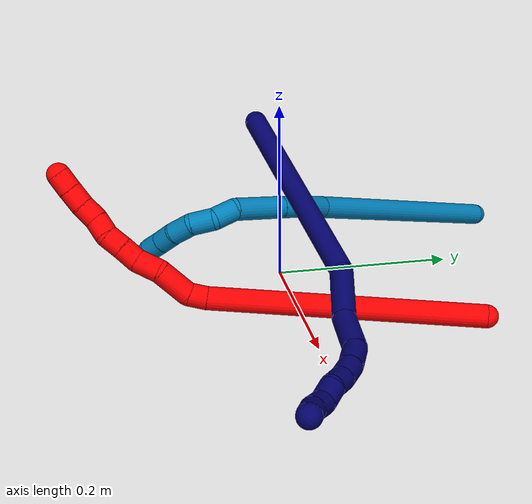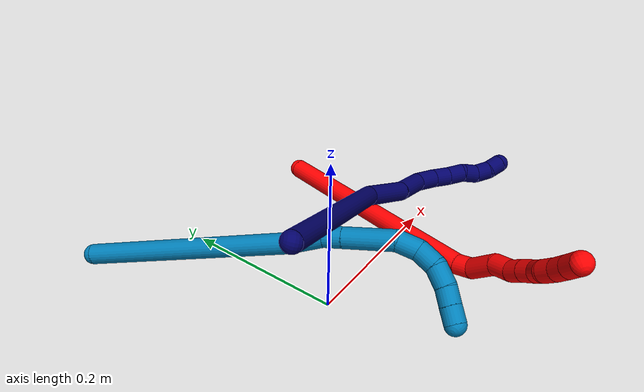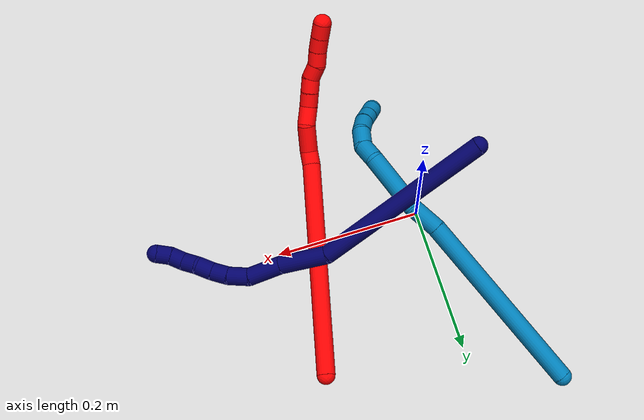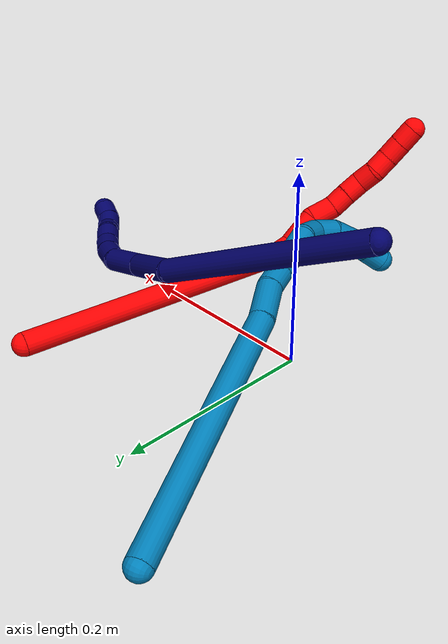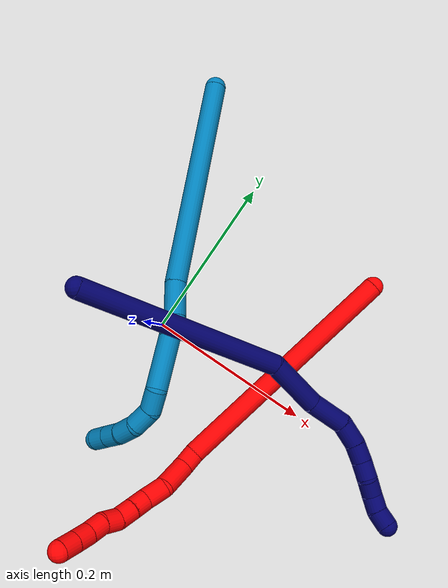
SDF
<sdf version="1.7">
 <world name="default">
  <model name="photoneo_s_sensor">
   <static>1</static>
   <pose>0 0 2 1.57079 1.57079 3.14159</pose>
   <link name="link">
    <inertial><mass>0.1</mass></inertial>
    <sensor name="sensor" type="depth">
     <update_rate>30</update_rate>
     <camera>
      <horizontal_fov>1.22</horizontal_fov>
      <image><width>1920</width><height>1200</height><format>B8G8R8</format></image>
      <clip><near>0.1</near><far>2</far></clip>
      <depth_camera><output>points</output></depth_camera>
     </camera>
     <plugin name="camera_plugin" filename="libgazebo_ros_depth_camera.so">
      <baseline>0.2</baseline>
      <alwaysOn>1</alwaysOn>
      <updateRate>0.0</updateRate>
      <cameraName>camera_ir</cameraName>
      <imageTopicName>/camera/color/image_raw</imageTopicName>
      <cameraInfoTopicName>/camera/color/camera_info</cameraInfoTopicName>
      <depthImageTopicName>/camera/depth/image_raw</depthImageTopicName>
      <depthImageCameraInfoTopicName>/camera/depth/camera_info</depthImageCameraInfoTopicName>
      <pointCloudTopicName>/camera/depth/points</pointCloudTopicName>
      <frameName>fr_optical</frameName>
      <pointCloudCutoff>0.1</pointCloudCutoff>
      <pointCloudCutoffMax>2.0</pointCloudCutoffMax>
      <distortionK1>0</distortionK1>
      <distortionK2>0</distortionK2>
      <distortionK3>0</distortionK3>
      <distortionT1>0</distortionT1>
      <distortionT2>0</distortionT2>
      <CxPrime>0</CxPrime>
      <Cx>0</Cx>
      <Cy>0</Cy>
      <focalLength>0</focalLength>
      <hackBaseline>0</hackBaseline>
     </plugin>
    </sensor>
   </link>
  </model>
  <model name="bin">
   <static>1</static>
   <link name="bottom">
    <collision name="collision-bottom">
     <pose>0 0 -0.01 0 -0 0</pose>
     <geometry><box><size>0.8 0.6 0.02</size></box></geometry>
     <surface>
      <friction><ode><mu>100</mu><mu2>100</mu2></ode></friction>
      <contact><collide_bitmask>65535</collide_bitmask></contact>
     </surface>
    </collision>
   </link>
   <link name="west_wall">
    <collision name="collision-west_wall">
     <pose>-0.41 0 0.1 0 -0 0</pose>
     <geometry><box><size>0.02 0.6 0.2</size></box></geometry>
     <surface>
      <friction><ode><mu>100</mu><mu2>100</mu2></ode></friction>
      <contact><collide_bitmask>65535</collide_bitmask></contact>
     </surface>
    </collision>
   </link>
   <link name="east_wall">
    <collision name="collision-east_wall">
     <pose>0.41 0 0.1 0 -0 0</pose>
     <geometry><box><size>0.02 0.6 0.2</size></box></geometry>
     <surface>
      <friction><ode><mu>100</mu><mu2>100</mu2></ode></friction>
      <contact><collide_bitmask>65535</collide_bitmask></contact>
     </surface>
    </collision>
   </link>
   <link name="south_wall">
    <collision name="collision-south_wall">
     <pose>0 -0.31 0.1 0 -0 0</pose>
     <geometry><box><size>0.8 0.02 0.2</size></box></geometry>
     <surface>
      <friction><ode><mu>100</mu><mu2>100</mu2></ode></friction>
      <contact><collide_bitmask>65535</collide_bitmask></contact>
     </surface>
    </collision>
   </link>
   <link name="north_wall">
    <collision name="collision-north_wall">
     <pose>0 0.31 0.1 0 -0 0</pose>
     <geometry><box><size>0.8 0.02 0.2</size></box></geometry>
     <surface>
      <friction><ode><mu>100</mu><mu2>100</mu2></ode></friction>
      <contact><collide_bitmask>65535</collide_bitmask></contact>
     </surface>
    </collision>
   </link>
  </model>
  <model name="2">
   <static>0</static>
   <link name="2">
    <collision name="collision-cylinder-e_1_1_4">
     <pose>0.016531 -0.086992 -0.117207 2.5031 0.112778 0.338277</pose>
     <geometry><cylinder><radius>0.0125</radius><length>0.29379</length></cylinder></geometry>
     <surface>
      <friction><ode><mu>1.16</mu><mu2>1.16</mu2><slip1>0</slip1><slip2>0</slip2></ode></friction>
      <contact><ode><kp>1e+06</kp><kd>1</kd><max_vel>0</max_vel><min_depth>0.001</min_depth></ode></contact>
     </surface>
    </collision>
    <visual name="visual-cylinder-e_1_1_4">
     <pose>0.016531 -0.086992 -0.117207 2.5031 0.112778 0.338277</pose>
     <geometry><cylinder><radius>0.0125</radius><length>0.29379</length></cylinder></geometry>
     <material><ambient>1 0 0 1</ambient></material>
    </visual>
    <collision name="collision-cylinder-e_2_4_5">
     <pose>0.032772 -0.181449 -0.241254 2.31257 -0.028709 -0.065229</pose>
     <geometry><cylinder><radius>0.0125</radius><length>0.02026</length></cylinder></geometry>
     <surface>
      <friction><ode><mu>1.16</mu><mu2>1.16</mu2><slip1>0</slip1><slip2>0</slip2></ode></friction>
      <contact><ode><kp>1e+06</kp><kd>1</kd><max_vel>0</max_vel><min_depth>0.001</min_depth></ode></contact>
     </surface>
    </collision>
    <visual name="visual-cylinder-e_2_4_5">
     <pose>0.032772 -0.181449 -0.241254 2.31257 -0.028709 -0.065229</pose>
     <geometry><cylinder><radius>0.0125</radius><length>0.02026</length></cylinder></geometry>
     <material><ambient>1 0 0 1</ambient></material>
    </visual>
    <collision name="collision-cylinder-e_3_5_6">
     <pose>0.02345 -0.20289 -0.257767 2.17615 -0.488439 -0.887697</pose>
     <geometry><cylinder><radius>0.0125</radius><length>0.038493</length></cylinder></geometry>
     <surface>
      <friction><ode><mu>1.16</mu><mu2>1.16</mu2><slip1>0</slip1><slip2>0</slip2></ode></friction>
      <contact><ode><kp>1e+06</kp><kd>1</kd><max_vel>0</max_vel><min_depth>0.001</min_depth></ode></contact>
     </surface>
    </collision>
    <visual name="visual-cylinder-e_3_5_6">
     <pose>0.02345 -0.20289 -0.257767 2.17615 -0.488439 -0.887697</pose>
     <geometry><cylinder><radius>0.0125</radius><length>0.038493</length></cylinder></geometry>
     <material><ambient>1 0 0 1</ambient></material>
    </visual>
    <collision name="collision-cylinder-e_4_6_7">
     <pose>0.010991 -0.223986 -0.277875 2.54293 -0.264944 -0.81522</pose>
     <geometry><cylinder><radius>0.0125</radius><length>0.026182</length></cylinder></geometry>
     <surface>
      <friction><ode><mu>1.16</mu><mu2>1.16</mu2><slip1>0</slip1><slip2>0</slip2></ode></friction>
      <contact><ode><kp>1e+06</kp><kd>1</kd><max_vel>0</max_vel><min_depth>0.001</min_depth></ode></contact>
     </surface>
    </collision>
    <visual name="visual-cylinder-e_4_6_7">
     <pose>0.010991 -0.223986 -0.277875 2.54293 -0.264944 -0.81522</pose>
     <geometry><cylinder><radius>0.0125</radius><length>0.026182</length></cylinder></geometry>
     <material><ambient>1 0 0 1</ambient></material>
    </visual>
    <collision name="collision-cylinder-e_5_7_8">
     <pose>0.002363 -0.237255 -0.294557 2.36388 -0.535504 -1.18004</pose>
     <geometry><cylinder><radius>0.0125</radius><length>0.020382</length></cylinder></geometry>
     <surface>
      <friction><ode><mu>1.16</mu><mu2>1.16</mu2><slip1>0</slip1><slip2>0</slip2></ode></friction>
      <contact><ode><kp>1e+06</kp><kd>1</kd><max_vel>0</max_vel><min_depth>0.001</min_depth></ode></contact>
     </surface>
    </collision>
    <visual name="visual-cylinder-e_5_7_8">
     <pose>0.002363 -0.237255 -0.294557 2.36388 -0.535504 -1.18004</pose>
     <geometry><cylinder><radius>0.0125</radius><length>0.020382</length></cylinder></geometry>
     <material><ambient>1 0 0 1</ambient></material>
    </visual>
    <collision name="collision-cylinder-e_6_8_9">
     <pose>-0.007592 -0.249417 -0.307336 2.39769 -0.491571 -1.14294</pose>
     <geometry><cylinder><radius>0.0125</radius><length>0.020145</length></cylinder></geometry>
     <surface>
      <friction><ode><mu>1.16</mu><mu2>1.16</mu2><slip1>0</slip1><slip2>0</slip2></ode></friction>
      <contact><ode><kp>1e+06</kp><kd>1</kd><max_vel>0</max_vel><min_depth>0.001</min_depth></ode></contact>
     </surface>
    </collision>
    <visual name="visual-cylinder-e_6_8_9">
     <pose>-0.007592 -0.249417 -0.307336 2.39769 -0.491571 -1.14294</pose>
     <geometry><cylinder><radius>0.0125</radius><length>0.020145</length></cylinder></geometry>
     <material><ambient>1 0 0 1</ambient></material>
    </visual>
    <collision name="collision-cylinder-e_7_9_10">
     <pose>-0.019617 -0.258591 -0.320346 2.68759 -0.789853 -2.12955</pose>
     <geometry><cylinder><radius>0.0125</radius><length>0.020473</length></cylinder></geometry>
     <surface>
      <friction><ode><mu>1.16</mu><mu2>1.16</mu2><slip1>0</slip1><slip2>0</slip2></ode></friction>
      <contact><ode><kp>1e+06</kp><kd>1</kd><max_vel>0</max_vel><min_depth>0.001</min_depth></ode></contact>
     </surface>
    </collision>
    <visual name="visual-cylinder-e_7_9_10">
     <pose>-0.019617 -0.258591 -0.320346 2.68759 -0.789853 -2.12955</pose>
     <geometry><cylinder><radius>0.0125</radius><length>0.020473</length></cylinder></geometry>
     <material><ambient>1 0 0 1</ambient></material>
    </visual>
    <collision name="collision-cylinder-e_8_10_11">
     <pose>-0.032578 -0.267865 -0.332462 2.31593 -0.599965 -1.22975</pose>
     <geometry><cylinder><radius>0.0125</radius><length>0.020158</length></cylinder></geometry>
     <surface>
      <friction><ode><mu>1.16</mu><mu2>1.16</mu2><slip1>0</slip1><slip2>0</slip2></ode></friction>
      <contact><ode><kp>1e+06</kp><kd>1</kd><max_vel>0</max_vel><min_depth>0.001</min_depth></ode></contact>
     </surface>
    </collision>
    <visual name="visual-cylinder-e_8_10_11">
     <pose>-0.032578 -0.267865 -0.332462 2.31593 -0.599965 -1.22975</pose>
     <geometry><cylinder><radius>0.0125</radius><length>0.020158</length></cylinder></geometry>
     <material><ambient>1 0 0 1</ambient></material>
    </visual>
    <collision name="collision-cylinder-e_9_11_12">
     <pose>-0.044854 -0.279359 -0.343382 2.34667 -0.718113 -1.45903</pose>
     <geometry><cylinder><radius>0.0125</radius><length>0.020017</length></cylinder></geometry>
     <surface>
      <friction><ode><mu>1.16</mu><mu2>1.16</mu2><slip1>0</slip1><slip2>0</slip2></ode></friction>
      <contact><ode><kp>1e+06</kp><kd>1</kd><max_vel>0</max_vel><min_depth>0.001</min_depth></ode></contact>
     </surface>
    </collision>
    <visual name="visual-cylinder-e_9_11_12">
     <pose>-0.044854 -0.279359 -0.343382 2.34667 -0.718113 -1.45903</pose>
     <geometry><cylinder><radius>0.0125</radius><length>0.020017</length></cylinder></geometry>
     <material><ambient>1 0 0 1</ambient></material>
    </visual>
    <collision name="collision-cylinder-e_10_12_2">
     <pose>-0.058253 -0.289972 -0.353875 2.35446 -0.744979 -1.51001</pose>
     <geometry><cylinder><radius>0.0125</radius><length>0.0201</length></cylinder></geometry>
     <surface>
      <friction><ode><mu>1.16</mu><mu2>1.16</mu2><slip1>0</slip1><slip2>0</slip2></ode></friction>
      <contact><ode><kp>1e+06</kp><kd>1</kd><max_vel>0</max_vel><min_depth>0.001</min_depth></ode></contact>
     </surface>
    </collision>
    <visual name="visual-cylinder-e_10_12_2">
     <pose>-0.058253 -0.289972 -0.353875 2.35446 -0.744979 -1.51001</pose>
     <geometry><cylinder><radius>0.0125</radius><length>0.0201</length></cylinder></geometry>
     <material><ambient>1 0 0 1</ambient></material>
    </visual>
    <collision name="collision-sphere-2">
     <pose>-0.065066 -0.295205 -0.35909 0 -0 0</pose>
     <geometry><sphere><radius>0.0125</radius></sphere></geometry>
     <surface>
      <friction><ode><mu>1.16</mu><mu2>1.16</mu2><slip1>0</slip1><slip2>0</slip2></ode></friction>
      <contact><ode><kp>1e+06</kp><kd>1</kd><max_vel>0</max_vel><min_depth>0.001</min_depth></ode></contact>
     </surface>
    </collision>
    <visual name="visual-sphere-2">
     <pose>-0.065066 -0.295205 -0.35909 0 -0 0</pose>
     <geometry><sphere><radius>0.0125</radius></sphere></geometry>
     <material><ambient>1 0 0 1</ambient></material>
    </visual>
    <collision name="collision-sphere-12">
     <pose>-0.051439 -0.284739 -0.34866 0 -0 0</pose>
     <geometry><sphere><radius>0.0125</radius></sphere></geometry>
     <surface>
      <friction><ode><mu>1.16</mu><mu2>1.16</mu2><slip1>0</slip1><slip2>0</slip2></ode></friction>
      <contact><ode><kp>1e+06</kp><kd>1</kd><max_vel>0</max_vel><min_depth>0.001</min_depth></ode></contact>
     </surface>
    </collision>
    <visual name="visual-sphere-12">
     <pose>-0.051439 -0.284739 -0.34866 0 -0 0</pose>
     <geometry><sphere><radius>0.0125</radius></sphere></geometry>
     <material><ambient>1 0 0 1</ambient></material>
    </visual>
    <collision name="collision-sphere-11">
     <pose>-0.038269 -0.273979 -0.338103 0 -0 0</pose>
     <geometry><sphere><radius>0.0125</radius></sphere></geometry>
     <surface>
      <friction><ode><mu>1.16</mu><mu2>1.16</mu2><slip1>0</slip1><slip2>0</slip2></ode></friction>
      <contact><ode><kp>1e+06</kp><kd>1</kd><max_vel>0</max_vel><min_depth>0.001</min_depth></ode></contact>
     </surface>
    </collision>
    <visual name="visual-sphere-11">
     <pose>-0.038269 -0.273979 -0.338103 0 -0 0</pose>
     <geometry><sphere><radius>0.0125</radius></sphere></geometry>
     <material><ambient>1 0 0 1</ambient></material>
    </visual>
    <collision name="collision-sphere-10">
     <pose>-0.026887 -0.261751 -0.326822 0 -0 0</pose>
     <geometry><sphere><radius>0.0125</radius></sphere></geometry>
     <surface>
      <friction><ode><mu>1.16</mu><mu2>1.16</mu2><slip1>0</slip1><slip2>0</slip2></ode></friction>
      <contact><ode><kp>1e+06</kp><kd>1</kd><max_vel>0</max_vel><min_depth>0.001</min_depth></ode></contact>
     </surface>
    </collision>
    <visual name="visual-sphere-10">
     <pose>-0.026887 -0.261751 -0.326822 0 -0 0</pose>
     <geometry><sphere><radius>0.0125</radius></sphere></geometry>
     <material><ambient>1 0 0 1</ambient></material>
    </visual>
    <collision name="collision-sphere-9">
     <pose>-0.012346 -0.25543 -0.31387 0 -0 0</pose>
     <geometry><sphere><radius>0.0125</radius></sphere></geometry>
     <surface>
      <friction><ode><mu>1.16</mu><mu2>1.16</mu2><slip1>0</slip1><slip2>0</slip2></ode></friction>
      <contact><ode><kp>1e+06</kp><kd>1</kd><max_vel>0</max_vel><min_depth>0.001</min_depth></ode></contact>
     </surface>
    </collision>
    <visual name="visual-sphere-9">
     <pose>-0.012346 -0.25543 -0.31387 0 -0 0</pose>
     <geometry><sphere><radius>0.0125</radius></sphere></geometry>
     <material><ambient>1 0 0 1</ambient></material>
    </visual>
    <collision name="collision-sphere-4">
     <pose>0.033063 -0.173983 -0.234413 0 -0 0</pose>
     <geometry><sphere><radius>0.0125</radius></sphere></geometry>
     <surface>
      <friction><ode><mu>1.16</mu><mu2>1.16</mu2><slip1>0</slip1><slip2>0</slip2></ode></friction>
      <contact><ode><kp>1e+06</kp><kd>1</kd><max_vel>0</max_vel><min_depth>0.001</min_depth></ode></contact>
     </surface>
    </collision>
    <visual name="visual-sphere-4">
     <pose>0.033063 -0.173983 -0.234413 0 -0 0</pose>
     <geometry><sphere><radius>0.0125</radius></sphere></geometry>
     <material><ambient>1 0 0 1</ambient></material>
    </visual>
    <collision name="collision-sphere-1">
     <geometry><sphere><radius>0.0125</radius></sphere></geometry>
     <surface>
      <friction><ode><mu>1.16</mu><mu2>1.16</mu2><slip1>0</slip1><slip2>0</slip2></ode></friction>
      <contact><ode><kp>1e+06</kp><kd>1</kd><max_vel>0</max_vel><min_depth>0.001</min_depth></ode></contact>
     </surface>
    </collision>
    <visual name="visual-sphere-1">
     <geometry><sphere><radius>0.0125</radius></sphere></geometry>
     <material><ambient>1 0 0 1</ambient></material>
    </visual>
    <collision name="collision-sphere-8">
     <pose>-0.002838 -0.243404 -0.300802 0 -0 0</pose>
     <geometry><sphere><radius>0.0125</radius></sphere></geometry>
     <surface>
      <friction><ode><mu>1.16</mu><mu2>1.16</mu2><slip1>0</slip1><slip2>0</slip2></ode></friction>
      <contact><ode><kp>1e+06</kp><kd>1</kd><max_vel>0</max_vel><min_depth>0.001</min_depth></ode></contact>
     </surface>
    </collision>
    <visual name="visual-sphere-8">
     <pose>-0.002838 -0.243404 -0.300802 0 -0 0</pose>
     <geometry><sphere><radius>0.0125</radius></sphere></geometry>
     <material><ambient>1 0 0 1</ambient></material>
    </visual>
    <collision name="collision-sphere-5">
     <pose>0.032481 -0.188914 -0.248095 0 -0 0</pose>
     <geometry><sphere><radius>0.0125</radius></sphere></geometry>
     <surface>
      <friction><ode><mu>1.16</mu><mu2>1.16</mu2><slip1>0</slip1><slip2>0</slip2></ode></friction>
      <contact><ode><kp>1e+06</kp><kd>1</kd><max_vel>0</max_vel><min_depth>0.001</min_depth></ode></contact>
     </surface>
    </collision>
    <visual name="visual-sphere-5">
     <pose>0.032481 -0.188914 -0.248095 0 -0 0</pose>
     <geometry><sphere><radius>0.0125</radius></sphere></geometry>
     <material><ambient>1 0 0 1</ambient></material>
    </visual>
    <collision name="collision-sphere-6">
     <pose>0.014418 -0.216866 -0.267438 0 -0 0</pose>
     <geometry><sphere><radius>0.0125</radius></sphere></geometry>
     <surface>
      <friction><ode><mu>1.16</mu><mu2>1.16</mu2><slip1>0</slip1><slip2>0</slip2></ode></friction>
      <contact><ode><kp>1e+06</kp><kd>1</kd><max_vel>0</max_vel><min_depth>0.001</min_depth></ode></contact>
     </surface>
    </collision>
    <visual name="visual-sphere-6">
     <pose>0.014418 -0.216866 -0.267438 0 -0 0</pose>
     <geometry><sphere><radius>0.0125</radius></sphere></geometry>
     <material><ambient>1 0 0 1</ambient></material>
    </visual>
    <collision name="collision-sphere-7">
     <pose>0.007563 -0.231106 -0.288312 0 -0 0</pose>
     <geometry><sphere><radius>0.0125</radius></sphere></geometry>
     <surface>
      <friction><ode><mu>1.16</mu><mu2>1.16</mu2><slip1>0</slip1><slip2>0</slip2></ode></friction>
      <contact><ode><kp>1e+06</kp><kd>1</kd><max_vel>0</max_vel><min_depth>0.001</min_depth></ode></contact>
     </surface>
    </collision>
    <visual name="visual-sphere-7">
     <pose>0.007563 -0.231106 -0.288312 0 -0 0</pose>
     <geometry><sphere><radius>0.0125</radius></sphere></geometry>
     <material><ambient>1 0 0 1</ambient></material>
    </visual>
    <inertial>
     <pose>0.006959 -0.149764 -0.191922 0 -0 0</pose>
     <mass>0.5</mass>
     <inertia>
      <ixx>0.002682</ixx>
      <ixy>0</ixy>
      <ixz>0</ixz>
      <iyy>-0.000897</iyy>
      <iyz>0</iyz>
      <izz>0.001012</izz>
     </inertia>
    </inertial>
   </link>
   <pose>0.187479 0.183368 0.012682 -1.30063 1.09919 -0.609195</pose>
  </model>
  <model name="7">
   <static>0</static>
   <link name="7">
    <collision name="collision-cylinder-e_1_1_4">
     <pose>0.097711 -0.029754 0.070808 0.397807 0.90462 0.195265</pose>
     <geometry><cylinder><radius>0.0125</radius><length>0.248567</length></cylinder></geometry>
     <surface>
      <friction><ode><mu>1.16</mu><mu2>1.16</mu2><slip1>0</slip1><slip2>0</slip2></ode></friction>
      <contact><ode><kp>1e+06</kp><kd>1</kd><max_vel>0</max_vel><min_depth>0.001</min_depth></ode></contact>
     </surface>
    </collision>
    <visual name="visual-cylinder-e_1_1_4">
     <pose>0.097711 -0.029754 0.070808 0.397807 0.90462 0.195265</pose>
     <geometry><cylinder><radius>0.0125</radius><length>0.248567</length></cylinder></geometry>
     <material><ambient>0.003922 0 0.403922 1</ambient></material>
    </visual>
    <collision name="collision-cylinder-e_2_4_5">
     <pose>0.214159 -0.062276 0.170079 0.096939 0.580024 0.02895</pose>
     <geometry><cylinder><radius>0.0125</radius><length>0.068379</length></cylinder></geometry>
     <surface>
      <friction><ode><mu>1.16</mu><mu2>1.16</mu2><slip1>0</slip1><slip2>0</slip2></ode></friction>
      <contact><ode><kp>1e+06</kp><kd>1</kd><max_vel>0</max_vel><min_depth>0.001</min_depth></ode></contact>
     </surface>
    </collision>
    <visual name="visual-cylinder-e_2_4_5">
     <pose>0.214159 -0.062276 0.170079 0.096939 0.580024 0.02895</pose>
     <geometry><cylinder><radius>0.0125</radius><length>0.068379</length></cylinder></geometry>
     <material><ambient>0.003922 0 0.403922 1</ambient></material>
    </visual>
    <collision name="collision-cylinder-e_3_5_6">
     <pose>0.24943 -0.065337 0.214934 0.017855 0.789659 0.00744</pose>
     <geometry><cylinder><radius>0.0125</radius><length>0.046568</length></cylinder></geometry>
     <surface>
      <friction><ode><mu>1.16</mu><mu2>1.16</mu2><slip1>0</slip1><slip2>0</slip2></ode></friction>
      <contact><ode><kp>1e+06</kp><kd>1</kd><max_vel>0</max_vel><min_depth>0.001</min_depth></ode></contact>
     </surface>
    </collision>
    <visual name="visual-cylinder-e_3_5_6">
     <pose>0.24943 -0.065337 0.214934 0.017855 0.789659 0.00744</pose>
     <geometry><cylinder><radius>0.0125</radius><length>0.046568</length></cylinder></geometry>
     <material><ambient>0.003922 0 0.403922 1</ambient></material>
    </visual>
    <collision name="collision-cylinder-e_4_6_7">
     <pose>0.272032 -0.063024 0.244366 -0.197187 0.428048 -0.042992</pose>
     <geometry><cylinder><radius>0.0125</radius><length>0.029235</length></cylinder></geometry>
     <surface>
      <friction><ode><mu>1.16</mu><mu2>1.16</mu2><slip1>0</slip1><slip2>0</slip2></ode></friction>
      <contact><ode><kp>1e+06</kp><kd>1</kd><max_vel>0</max_vel><min_depth>0.001</min_depth></ode></contact>
     </surface>
    </collision>
    <visual name="visual-cylinder-e_4_6_7">
     <pose>0.272032 -0.063024 0.244366 -0.197187 0.428048 -0.042992</pose>
     <geometry><cylinder><radius>0.0125</radius><length>0.029235</length></cylinder></geometry>
     <material><ambient>0.003922 0 0.403922 1</ambient></material>
    </visual>
    <collision name="collision-cylinder-e_5_7_8">
     <pose>0.280748 -0.057229 0.268308 -0.284699 0.229108 -0.032977</pose>
     <geometry><cylinder><radius>0.0125</radius><length>0.023326</length></cylinder></geometry>
     <surface>
      <friction><ode><mu>1.16</mu><mu2>1.16</mu2><slip1>0</slip1><slip2>0</slip2></ode></friction>
      <contact><ode><kp>1e+06</kp><kd>1</kd><max_vel>0</max_vel><min_depth>0.001</min_depth></ode></contact>
     </surface>
    </collision>
    <visual name="visual-cylinder-e_5_7_8">
     <pose>0.280748 -0.057229 0.268308 -0.284699 0.229108 -0.032977</pose>
     <geometry><cylinder><radius>0.0125</radius><length>0.023326</length></cylinder></geometry>
     <material><ambient>0.003922 0 0.403922 1</ambient></material>
    </visual>
    <collision name="collision-cylinder-e_6_8_9">
     <pose>0.28516 -0.049345 0.289077 -0.443979 0.159958 -0.036177</pose>
     <geometry><cylinder><radius>0.0125</radius><length>0.022135</length></cylinder></geometry>
     <surface>
      <friction><ode><mu>1.16</mu><mu2>1.16</mu2><slip1>0</slip1><slip2>0</slip2></ode></friction>
      <contact><ode><kp>1e+06</kp><kd>1</kd><max_vel>0</max_vel><min_depth>0.001</min_depth></ode></contact>
     </surface>
    </collision>
    <visual name="visual-cylinder-e_6_8_9">
     <pose>0.28516 -0.049345 0.289077 -0.443979 0.159958 -0.036177</pose>
     <geometry><cylinder><radius>0.0125</radius><length>0.022135</length></cylinder></geometry>
     <material><ambient>0.003922 0 0.403922 1</ambient></material>
    </visual>
    <collision name="collision-cylinder-e_7_9_10">
     <pose>0.288654 -0.043859 0.309606 -0.074209 0.160566 -0.005973</pose>
     <geometry><cylinder><radius>0.0125</radius><length>0.021662</length></cylinder></geometry>
     <surface>
      <friction><ode><mu>1.16</mu><mu2>1.16</mu2><slip1>0</slip1><slip2>0</slip2></ode></friction>
      <contact><ode><kp>1e+06</kp><kd>1</kd><max_vel>0</max_vel><min_depth>0.001</min_depth></ode></contact>
     </surface>
    </collision>
    <visual name="visual-cylinder-e_7_9_10">
     <pose>0.288654 -0.043859 0.309606 -0.074209 0.160566 -0.005973</pose>
     <geometry><cylinder><radius>0.0125</radius><length>0.021662</length></cylinder></geometry>
     <material><ambient>0.003922 0 0.403922 1</ambient></material>
    </visual>
    <collision name="collision-cylinder-e_8_10_11">
     <pose>0.291883 -0.03808 0.328859 -0.525935 0.149551 -0.040329</pose>
     <geometry><cylinder><radius>0.0125</radius><length>0.02009</length></cylinder></geometry>
     <surface>
      <friction><ode><mu>1.16</mu><mu2>1.16</mu2><slip1>0</slip1><slip2>0</slip2></ode></friction>
      <contact><ode><kp>1e+06</kp><kd>1</kd><max_vel>0</max_vel><min_depth>0.001</min_depth></ode></contact>
     </surface>
    </collision>
    <visual name="visual-cylinder-e_8_10_11">
     <pose>0.291883 -0.03808 0.328859 -0.525935 0.149551 -0.040329</pose>
     <geometry><cylinder><radius>0.0125</radius><length>0.02009</length></cylinder></geometry>
     <material><ambient>0.003922 0 0.403922 1</ambient></material>
    </visual>
    <collision name="collision-cylinder-e_9_11_2">
     <pose>0.297644 -0.028054 0.344985 -0.589378 0.439724 -0.135453</pose>
     <geometry><cylinder><radius>0.0125</radius><length>0.020037</length></cylinder></geometry>
     <surface>
      <friction><ode><mu>1.16</mu><mu2>1.16</mu2><slip1>0</slip1><slip2>0</slip2></ode></friction>
      <contact><ode><kp>1e+06</kp><kd>1</kd><max_vel>0</max_vel><min_depth>0.001</min_depth></ode></contact>
     </surface>
    </collision>
    <visual name="visual-cylinder-e_9_11_2">
     <pose>0.297644 -0.028054 0.344985 -0.589378 0.439724 -0.135453</pose>
     <geometry><cylinder><radius>0.0125</radius><length>0.020037</length></cylinder></geometry>
     <material><ambient>0.003922 0 0.403922 1</ambient></material>
    </visual>
    <collision name="collision-sphere-2">
     <pose>0.301909 -0.023015 0.352521 0 -0 0</pose>
     <geometry><sphere><radius>0.0125</radius></sphere></geometry>
     <surface>
      <friction><ode><mu>1.16</mu><mu2>1.16</mu2><slip1>0</slip1><slip2>0</slip2></ode></friction>
      <contact><ode><kp>1e+06</kp><kd>1</kd><max_vel>0</max_vel><min_depth>0.001</min_depth></ode></contact>
     </surface>
    </collision>
    <visual name="visual-sphere-2">
     <pose>0.301909 -0.023015 0.352521 0 -0 0</pose>
     <geometry><sphere><radius>0.0125</radius></sphere></geometry>
     <material><ambient>0.003922 0 0.403922 1</ambient></material>
    </visual>
    <collision name="collision-sphere-11">
     <pose>0.293379 -0.033093 0.337449 0 -0 0</pose>
     <geometry><sphere><radius>0.0125</radius></sphere></geometry>
     <surface>
      <friction><ode><mu>1.16</mu><mu2>1.16</mu2><slip1>0</slip1><slip2>0</slip2></ode></friction>
      <contact><ode><kp>1e+06</kp><kd>1</kd><max_vel>0</max_vel><min_depth>0.001</min_depth></ode></contact>
     </surface>
    </collision>
    <visual name="visual-sphere-11">
     <pose>0.293379 -0.033093 0.337449 0 -0 0</pose>
     <geometry><sphere><radius>0.0125</radius></sphere></geometry>
     <material><ambient>0.003922 0 0.403922 1</ambient></material>
    </visual>
    <collision name="collision-sphere-10">
     <pose>0.290386 -0.043067 0.320268 0 -0 0</pose>
     <geometry><sphere><radius>0.0125</radius></sphere></geometry>
     <surface>
      <friction><ode><mu>1.16</mu><mu2>1.16</mu2><slip1>0</slip1><slip2>0</slip2></ode></friction>
      <contact><ode><kp>1e+06</kp><kd>1</kd><max_vel>0</max_vel><min_depth>0.001</min_depth></ode></contact>
     </surface>
    </collision>
    <visual name="visual-sphere-10">
     <pose>0.290386 -0.043067 0.320268 0 -0 0</pose>
     <geometry><sphere><radius>0.0125</radius></sphere></geometry>
     <material><ambient>0.003922 0 0.403922 1</ambient></material>
    </visual>
    <collision name="collision-sphere-9">
     <pose>0.286923 -0.044652 0.298944 0 -0 0</pose>
     <geometry><sphere><radius>0.0125</radius></sphere></geometry>
     <surface>
      <friction><ode><mu>1.16</mu><mu2>1.16</mu2><slip1>0</slip1><slip2>0</slip2></ode></friction>
      <contact><ode><kp>1e+06</kp><kd>1</kd><max_vel>0</max_vel><min_depth>0.001</min_depth></ode></contact>
     </surface>
    </collision>
    <visual name="visual-sphere-9">
     <pose>0.286923 -0.044652 0.298944 0 -0 0</pose>
     <geometry><sphere><radius>0.0125</radius></sphere></geometry>
     <material><ambient>0.003922 0 0.403922 1</ambient></material>
    </visual>
    <collision name="collision-sphere-4">
     <pose>0.195421 -0.059508 0.141616 0 -0 0</pose>
     <geometry><sphere><radius>0.0125</radius></sphere></geometry>
     <surface>
      <friction><ode><mu>1.16</mu><mu2>1.16</mu2><slip1>0</slip1><slip2>0</slip2></ode></friction>
      <contact><ode><kp>1e+06</kp><kd>1</kd><max_vel>0</max_vel><min_depth>0.001</min_depth></ode></contact>
     </surface>
    </collision>
    <visual name="visual-sphere-4">
     <pose>0.195421 -0.059508 0.141616 0 -0 0</pose>
     <geometry><sphere><radius>0.0125</radius></sphere></geometry>
     <material><ambient>0.003922 0 0.403922 1</ambient></material>
    </visual>
    <collision name="collision-sphere-1">
     <geometry><sphere><radius>0.0125</radius></sphere></geometry>
     <surface>
      <friction><ode><mu>1.16</mu><mu2>1.16</mu2><slip1>0</slip1><slip2>0</slip2></ode></friction>
      <contact><ode><kp>1e+06</kp><kd>1</kd><max_vel>0</max_vel><min_depth>0.001</min_depth></ode></contact>
     </surface>
    </collision>
    <visual name="visual-sphere-1">
     <geometry><sphere><radius>0.0125</radius></sphere></geometry>
     <material><ambient>0.003922 0 0.403922 1</ambient></material>
    </visual>
    <collision name="collision-sphere-8">
     <pose>0.283397 -0.054038 0.27921 0 -0 0</pose>
     <geometry><sphere><radius>0.0125</radius></sphere></geometry>
     <surface>
      <friction><ode><mu>1.16</mu><mu2>1.16</mu2><slip1>0</slip1><slip2>0</slip2></ode></friction>
      <contact><ode><kp>1e+06</kp><kd>1</kd><max_vel>0</max_vel><min_depth>0.001</min_depth></ode></contact>
     </surface>
    </collision>
    <visual name="visual-sphere-8">
     <pose>0.283397 -0.054038 0.27921 0 -0 0</pose>
     <geometry><sphere><radius>0.0125</radius></sphere></geometry>
     <material><ambient>0.003922 0 0.403922 1</ambient></material>
    </visual>
    <collision name="collision-sphere-5">
     <pose>0.232896 -0.065044 0.198543 0 -0 0</pose>
     <geometry><sphere><radius>0.0125</radius></sphere></geometry>
     <surface>
      <friction><ode><mu>1.16</mu><mu2>1.16</mu2><slip1>0</slip1><slip2>0</slip2></ode></friction>
      <contact><ode><kp>1e+06</kp><kd>1</kd><max_vel>0</max_vel><min_depth>0.001</min_depth></ode></contact>
     </surface>
    </collision>
    <visual name="visual-sphere-5">
     <pose>0.232896 -0.065044 0.198543 0 -0 0</pose>
     <geometry><sphere><radius>0.0125</radius></sphere></geometry>
     <material><ambient>0.003922 0 0.403922 1</ambient></material>
    </visual>
    <collision name="collision-sphere-6">
     <pose>0.265964 -0.06563 0.231326 0 -0 0</pose>
     <geometry><sphere><radius>0.0125</radius></sphere></geometry>
     <surface>
      <friction><ode><mu>1.16</mu><mu2>1.16</mu2><slip1>0</slip1><slip2>0</slip2></ode></friction>
      <contact><ode><kp>1e+06</kp><kd>1</kd><max_vel>0</max_vel><min_depth>0.001</min_depth></ode></contact>
     </surface>
    </collision>
    <visual name="visual-sphere-6">
     <pose>0.265964 -0.06563 0.231326 0 -0 0</pose>
     <geometry><sphere><radius>0.0125</radius></sphere></geometry>
     <material><ambient>0.003922 0 0.403922 1</ambient></material>
    </visual>
    <collision name="collision-sphere-7">
     <pose>0.2781 -0.060419 0.257407 0 -0 0</pose>
     <geometry><sphere><radius>0.0125</radius></sphere></geometry>
     <surface>
      <friction><ode><mu>1.16</mu><mu2>1.16</mu2><slip1>0</slip1><slip2>0</slip2></ode></friction>
      <contact><ode><kp>1e+06</kp><kd>1</kd><max_vel>0</max_vel><min_depth>0.001</min_depth></ode></contact>
     </surface>
    </collision>
    <visual name="visual-sphere-7">
     <pose>0.2781 -0.060419 0.257407 0 -0 0</pose>
     <geometry><sphere><radius>0.0125</radius></sphere></geometry>
     <material><ambient>0.003922 0 0.403922 1</ambient></material>
    </visual>
    <inertial>
     <pose>0.178883 -0.042488 0.158534 0 -0 0</pose>
     <mass>0.5</mass>
     <inertia>
      <ixx>0.001003</ixx>
      <ixy>0</ixy>
      <ixz>0</ixz>
      <iyy>0.001446</iyy>
      <iyz>0</iyz>
      <izz>-0.000705</izz>
     </inertia>
    </inertial>
   </link>
   <pose>-0.080875 -0.012096 0.160424 1.93026 -0.015319 0.736914</pose>
  </model>
  <model name="9">
   <static>0</static>
   <link name="9">
    <collision name="collision-cylinder-e_1_1_4">
     <pose>0.110185 -0.06037 -0.029336 2.02312 1.02367 1.46293</pose>
     <geometry><cylinder><radius>0.0125</radius><length>0.258038</length></cylinder></geometry>
     <surface>
      <friction><ode><mu>1.16</mu><mu2>1.16</mu2><slip1>0</slip1><slip2>0</slip2></ode></friction>
      <contact><ode><kp>1e+06</kp><kd>1</kd><max_vel>0</max_vel><min_depth>0.001</min_depth></ode></contact>
     </surface>
    </collision>
    <visual name="visual-cylinder-e_1_1_4">
     <pose>0.110185 -0.06037 -0.029336 2.02312 1.02367 1.46293</pose>
     <geometry><cylinder><radius>0.0125</radius><length>0.258038</length></cylinder></geometry>
     <material><ambient>0 0.490196 0.709804 1</ambient></material>
    </visual>
    <collision name="collision-cylinder-e_2_4_5">
     <pose>0.237172 -0.129065 -0.066531 2.32756 0.972668 1.77347</pose>
     <geometry><cylinder><radius>0.0125</radius><length>0.040663</length></cylinder></geometry>
     <surface>
      <friction><ode><mu>1.16</mu><mu2>1.16</mu2><slip1>0</slip1><slip2>0</slip2></ode></friction>
      <contact><ode><kp>1e+06</kp><kd>1</kd><max_vel>0</max_vel><min_depth>0.001</min_depth></ode></contact>
     </surface>
    </collision>
    <visual name="visual-cylinder-e_2_4_5">
     <pose>0.237172 -0.129065 -0.066531 2.32756 0.972668 1.77347</pose>
     <geometry><cylinder><radius>0.0125</radius><length>0.040663</length></cylinder></geometry>
     <material><ambient>0 0.490196 0.709804 1</ambient></material>
    </visual>
    <collision name="collision-cylinder-e_3_5_6">
     <pose>0.263369 -0.143796 -0.076408 1.87564 0.950074 1.22281</pose>
     <geometry><cylinder><radius>0.0125</radius><length>0.0231</length></cylinder></geometry>
     <surface>
      <friction><ode><mu>1.16</mu><mu2>1.16</mu2><slip1>0</slip1><slip2>0</slip2></ode></friction>
      <contact><ode><kp>1e+06</kp><kd>1</kd><max_vel>0</max_vel><min_depth>0.001</min_depth></ode></contact>
     </surface>
    </collision>
    <visual name="visual-cylinder-e_3_5_6">
     <pose>0.263369 -0.143796 -0.076408 1.87564 0.950074 1.22281</pose>
     <geometry><cylinder><radius>0.0125</radius><length>0.0231</length></cylinder></geometry>
     <material><ambient>0 0.490196 0.709804 1</ambient></material>
    </visual>
    <collision name="collision-cylinder-e_4_6_7">
     <pose>0.297548 -0.167075 -0.083745 1.87631 0.950878 1.2244</pose>
     <geometry><cylinder><radius>0.0125</radius><length>0.060898</length></cylinder></geometry>
     <surface>
      <friction><ode><mu>1.16</mu><mu2>1.16</mu2><slip1>0</slip1><slip2>0</slip2></ode></friction>
      <contact><ode><kp>1e+06</kp><kd>1</kd><max_vel>0</max_vel><min_depth>0.001</min_depth></ode></contact>
     </surface>
    </collision>
    <visual name="visual-cylinder-e_4_6_7">
     <pose>0.297548 -0.167075 -0.083745 1.87631 0.950878 1.2244</pose>
     <geometry><cylinder><radius>0.0125</radius><length>0.060898</length></cylinder></geometry>
     <material><ambient>0 0.490196 0.709804 1</ambient></material>
    </visual>
    <collision name="collision-cylinder-e_5_7_8">
     <pose>0.329177 -0.19499 -0.090356 1.68711 0.551844 0.616056</pose>
     <geometry><cylinder><radius>0.0125</radius><length>0.026115</length></cylinder></geometry>
     <surface>
      <friction><ode><mu>1.16</mu><mu2>1.16</mu2><slip1>0</slip1><slip2>0</slip2></ode></friction>
      <contact><ode><kp>1e+06</kp><kd>1</kd><max_vel>0</max_vel><min_depth>0.001</min_depth></ode></contact>
     </surface>
    </collision>
    <visual name="visual-cylinder-e_5_7_8">
     <pose>0.329177 -0.19499 -0.090356 1.68711 0.551844 0.616056</pose>
     <geometry><cylinder><radius>0.0125</radius><length>0.026115</length></cylinder></geometry>
     <material><ambient>0 0.490196 0.709804 1</ambient></material>
    </visual>
    <collision name="collision-cylinder-e_6_8_9">
     <pose>0.342361 -0.215968 -0.086791 1.1162 0.52057 0.329522</pose>
     <geometry><cylinder><radius>0.0125</radius><length>0.02549</length></cylinder></geometry>
     <surface>
      <friction><ode><mu>1.16</mu><mu2>1.16</mu2><slip1>0</slip1><slip2>0</slip2></ode></friction>
      <contact><ode><kp>1e+06</kp><kd>1</kd><max_vel>0</max_vel><min_depth>0.001</min_depth></ode></contact>
     </surface>
    </collision>
    <visual name="visual-cylinder-e_6_8_9">
     <pose>0.342361 -0.215968 -0.086791 1.1162 0.52057 0.329522</pose>
     <geometry><cylinder><radius>0.0125</radius><length>0.02549</length></cylinder></geometry>
     <material><ambient>0 0.490196 0.709804 1</ambient></material>
    </visual>
    <collision name="collision-cylinder-e_7_9_10">
     <pose>0.350424 -0.236182 -0.0753 0.997586 0.139922 0.076308</pose>
     <geometry><cylinder><radius>0.0125</radius><length>0.024715</length></cylinder></geometry>
     <surface>
      <friction><ode><mu>1.16</mu><mu2>1.16</mu2><slip1>0</slip1><slip2>0</slip2></ode></friction>
      <contact><ode><kp>1e+06</kp><kd>1</kd><max_vel>0</max_vel><min_depth>0.001</min_depth></ode></contact>
     </surface>
    </collision>
    <visual name="visual-cylinder-e_7_9_10">
     <pose>0.350424 -0.236182 -0.0753 0.997586 0.139922 0.076308</pose>
     <geometry><cylinder><radius>0.0125</radius><length>0.024715</length></cylinder></geometry>
     <material><ambient>0 0.490196 0.709804 1</ambient></material>
    </visual>
    <collision name="collision-cylinder-e_8_10_11">
     <pose>0.351731 -0.254573 -0.06232 0.906925 -0.040383 -0.019682</pose>
     <geometry><cylinder><radius>0.0125</radius><length>0.020609</length></cylinder></geometry>
     <surface>
      <friction><ode><mu>1.16</mu><mu2>1.16</mu2><slip1>0</slip1><slip2>0</slip2></ode></friction>
      <contact><ode><kp>1e+06</kp><kd>1</kd><max_vel>0</max_vel><min_depth>0.001</min_depth></ode></contact>
     </surface>
    </collision>
    <visual name="visual-cylinder-e_8_10_11">
     <pose>0.351731 -0.254573 -0.06232 0.906925 -0.040383 -0.019682</pose>
     <geometry><cylinder><radius>0.0125</radius><length>0.020609</length></cylinder></geometry>
     <material><ambient>0 0.490196 0.709804 1</ambient></material>
    </visual>
    <collision name="collision-cylinder-e_9_11_2">
     <pose>0.351156 -0.270629 -0.049605 0.89509 -0.0156 -0.007488</pose>
     <geometry><cylinder><radius>0.0125</radius><length>0.020372</length></cylinder></geometry>
     <surface>
      <friction><ode><mu>1.16</mu><mu2>1.16</mu2><slip1>0</slip1><slip2>0</slip2></ode></friction>
      <contact><ode><kp>1e+06</kp><kd>1</kd><max_vel>0</max_vel><min_depth>0.001</min_depth></ode></contact>
     </surface>
    </collision>
    <visual name="visual-cylinder-e_9_11_2">
     <pose>0.351156 -0.270629 -0.049605 0.89509 -0.0156 -0.007488</pose>
     <geometry><cylinder><radius>0.0125</radius><length>0.020372</length></cylinder></geometry>
     <material><ambient>0 0.490196 0.709804 1</ambient></material>
    </visual>
    <collision name="collision-sphere-2">
     <pose>0.350997 -0.278576 -0.043235 0 -0 0</pose>
     <geometry><sphere><radius>0.0125</radius></sphere></geometry>
     <surface>
      <friction><ode><mu>1.16</mu><mu2>1.16</mu2><slip1>0</slip1><slip2>0</slip2></ode></friction>
      <contact><ode><kp>1e+06</kp><kd>1</kd><max_vel>0</max_vel><min_depth>0.001</min_depth></ode></contact>
     </surface>
    </collision>
    <visual name="visual-sphere-2">
     <pose>0.350997 -0.278576 -0.043235 0 -0 0</pose>
     <geometry><sphere><radius>0.0125</radius></sphere></geometry>
     <material><ambient>0 0.490196 0.709804 1</ambient></material>
    </visual>
    <collision name="collision-sphere-11">
     <pose>0.351315 -0.262682 -0.055975 0 -0 0</pose>
     <geometry><sphere><radius>0.0125</radius></sphere></geometry>
     <surface>
      <friction><ode><mu>1.16</mu><mu2>1.16</mu2><slip1>0</slip1><slip2>0</slip2></ode></friction>
      <contact><ode><kp>1e+06</kp><kd>1</kd><max_vel>0</max_vel><min_depth>0.001</min_depth></ode></contact>
     </surface>
    </collision>
    <visual name="visual-sphere-11">
     <pose>0.351315 -0.262682 -0.055975 0 -0 0</pose>
     <geometry><sphere><radius>0.0125</radius></sphere></geometry>
     <material><ambient>0 0.490196 0.709804 1</ambient></material>
    </visual>
    <collision name="collision-sphere-10">
     <pose>0.352147 -0.246463 -0.068664 0 -0 0</pose>
     <geometry><sphere><radius>0.0125</radius></sphere></geometry>
     <surface>
      <friction><ode><mu>1.16</mu><mu2>1.16</mu2><slip1>0</slip1><slip2>0</slip2></ode></friction>
      <contact><ode><kp>1e+06</kp><kd>1</kd><max_vel>0</max_vel><min_depth>0.001</min_depth></ode></contact>
     </surface>
    </collision>
    <visual name="visual-sphere-10">
     <pose>0.352147 -0.246463 -0.068664 0 -0 0</pose>
     <geometry><sphere><radius>0.0125</radius></sphere></geometry>
     <material><ambient>0 0.490196 0.709804 1</ambient></material>
    </visual>
    <collision name="collision-sphere-9">
     <pose>0.3487 -0.225902 -0.081936 0 -0 0</pose>
     <geometry><sphere><radius>0.0125</radius></sphere></geometry>
     <surface>
      <friction><ode><mu>1.16</mu><mu2>1.16</mu2><slip1>0</slip1><slip2>0</slip2></ode></friction>
      <contact><ode><kp>1e+06</kp><kd>1</kd><max_vel>0</max_vel><min_depth>0.001</min_depth></ode></contact>
     </surface>
    </collision>
    <visual name="visual-sphere-9">
     <pose>0.3487 -0.225902 -0.081936 0 -0 0</pose>
     <geometry><sphere><radius>0.0125</radius></sphere></geometry>
     <material><ambient>0 0.490196 0.709804 1</ambient></material>
    </visual>
    <collision name="collision-sphere-4">
     <pose>0.220371 -0.120741 -0.058671 0 -0 0</pose>
     <geometry><sphere><radius>0.0125</radius></sphere></geometry>
     <surface>
      <friction><ode><mu>1.16</mu><mu2>1.16</mu2><slip1>0</slip1><slip2>0</slip2></ode></friction>
      <contact><ode><kp>1e+06</kp><kd>1</kd><max_vel>0</max_vel><min_depth>0.001</min_depth></ode></contact>
     </surface>
    </collision>
    <visual name="visual-sphere-4">
     <pose>0.220371 -0.120741 -0.058671 0 -0 0</pose>
     <geometry><sphere><radius>0.0125</radius></sphere></geometry>
     <material><ambient>0 0.490196 0.709804 1</ambient></material>
    </visual>
    <collision name="collision-sphere-1">
     <geometry><sphere><radius>0.0125</radius></sphere></geometry>
     <surface>
      <friction><ode><mu>1.16</mu><mu2>1.16</mu2><slip1>0</slip1><slip2>0</slip2></ode></friction>
      <contact><ode><kp>1e+06</kp><kd>1</kd><max_vel>0</max_vel><min_depth>0.001</min_depth></ode></contact>
     </surface>
    </collision>
    <visual name="visual-sphere-1">
     <geometry><sphere><radius>0.0125</radius></sphere></geometry>
     <material><ambient>0 0.490196 0.709804 1</ambient></material>
    </visual>
    <collision name="collision-sphere-8">
     <pose>0.336022 -0.206034 -0.091647 0 -0 0</pose>
     <geometry><sphere><radius>0.0125</radius></sphere></geometry>
     <surface>
      <friction><ode><mu>1.16</mu><mu2>1.16</mu2><slip1>0</slip1><slip2>0</slip2></ode></friction>
      <contact><ode><kp>1e+06</kp><kd>1</kd><max_vel>0</max_vel><min_depth>0.001</min_depth></ode></contact>
     </surface>
    </collision>
    <visual name="visual-sphere-8">
     <pose>0.336022 -0.206034 -0.091647 0 -0 0</pose>
     <geometry><sphere><radius>0.0125</radius></sphere></geometry>
     <material><ambient>0 0.490196 0.709804 1</ambient></material>
    </visual>
    <collision name="collision-sphere-5">
     <pose>0.253974 -0.137388 -0.074391 0 -0 0</pose>
     <geometry><sphere><radius>0.0125</radius></sphere></geometry>
     <surface>
      <friction><ode><mu>1.16</mu><mu2>1.16</mu2><slip1>0</slip1><slip2>0</slip2></ode></friction>
      <contact><ode><kp>1e+06</kp><kd>1</kd><max_vel>0</max_vel><min_depth>0.001</min_depth></ode></contact>
     </surface>
    </collision>
    <visual name="visual-sphere-5">
     <pose>0.253974 -0.137388 -0.074391 0 -0 0</pose>
     <geometry><sphere><radius>0.0125</radius></sphere></geometry>
     <material><ambient>0 0.490196 0.709804 1</ambient></material>
    </visual>
    <collision name="collision-sphere-6">
     <pose>0.272765 -0.150204 -0.078424 0 -0 0</pose>
     <geometry><sphere><radius>0.0125</radius></sphere></geometry>
     <surface>
      <friction><ode><mu>1.16</mu><mu2>1.16</mu2><slip1>0</slip1><slip2>0</slip2></ode></friction>
      <contact><ode><kp>1e+06</kp><kd>1</kd><max_vel>0</max_vel><min_depth>0.001</min_depth></ode></contact>
     </surface>
    </collision>
    <visual name="visual-sphere-6">
     <pose>0.272765 -0.150204 -0.078424 0 -0 0</pose>
     <geometry><sphere><radius>0.0125</radius></sphere></geometry>
     <material><ambient>0 0.490196 0.709804 1</ambient></material>
    </visual>
    <collision name="collision-sphere-7">
     <pose>0.322331 -0.183946 -0.089066 0 -0 0</pose>
     <geometry><sphere><radius>0.0125</radius></sphere></geometry>
     <surface>
      <friction><ode><mu>1.16</mu><mu2>1.16</mu2><slip1>0</slip1><slip2>0</slip2></ode></friction>
      <contact><ode><kp>1e+06</kp><kd>1</kd><max_vel>0</max_vel><min_depth>0.001</min_depth></ode></contact>
     </surface>
    </collision>
    <visual name="visual-sphere-7">
     <pose>0.322331 -0.183946 -0.089066 0 -0 0</pose>
     <geometry><sphere><radius>0.0125</radius></sphere></geometry>
     <material><ambient>0 0.490196 0.709804 1</ambient></material>
    </visual>
    <inertial>
     <pose>0.205333 -0.123033 -0.051736 0 -0 0</pose>
     <mass>0.5</mass>
     <inertia>
      <ixx>0.000885</ixx>
      <ixy>0</ixy>
      <ixz>0</ixz>
      <iyy>0.001801</iyy>
      <iyz>0</iyz>
      <izz>-0.000564</izz>
     </inertia>
    </inertial>
   </link>
   <pose>-0.11078 0.278915 0.011508 1.60307 -0.750866 -1.39965</pose>
  </model>
 </world>
</sdf>
